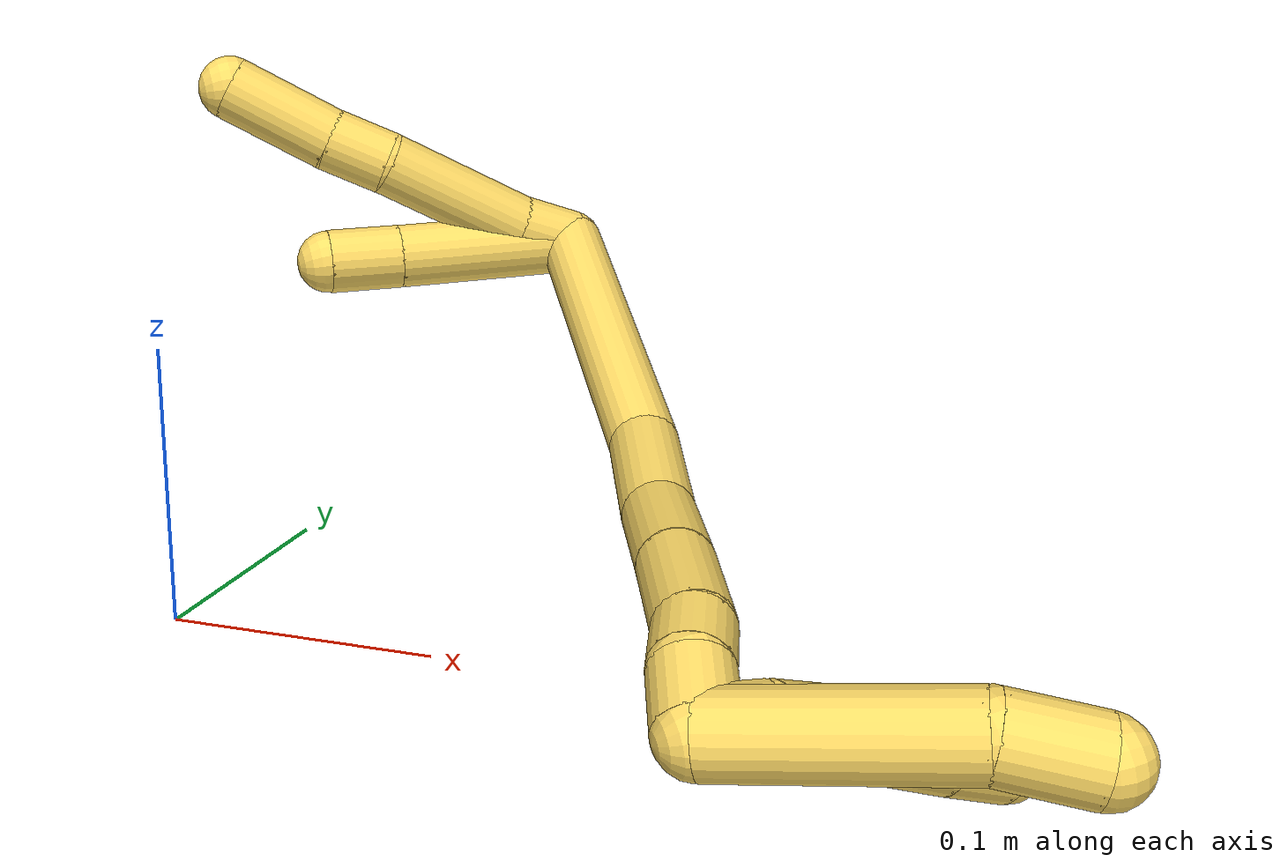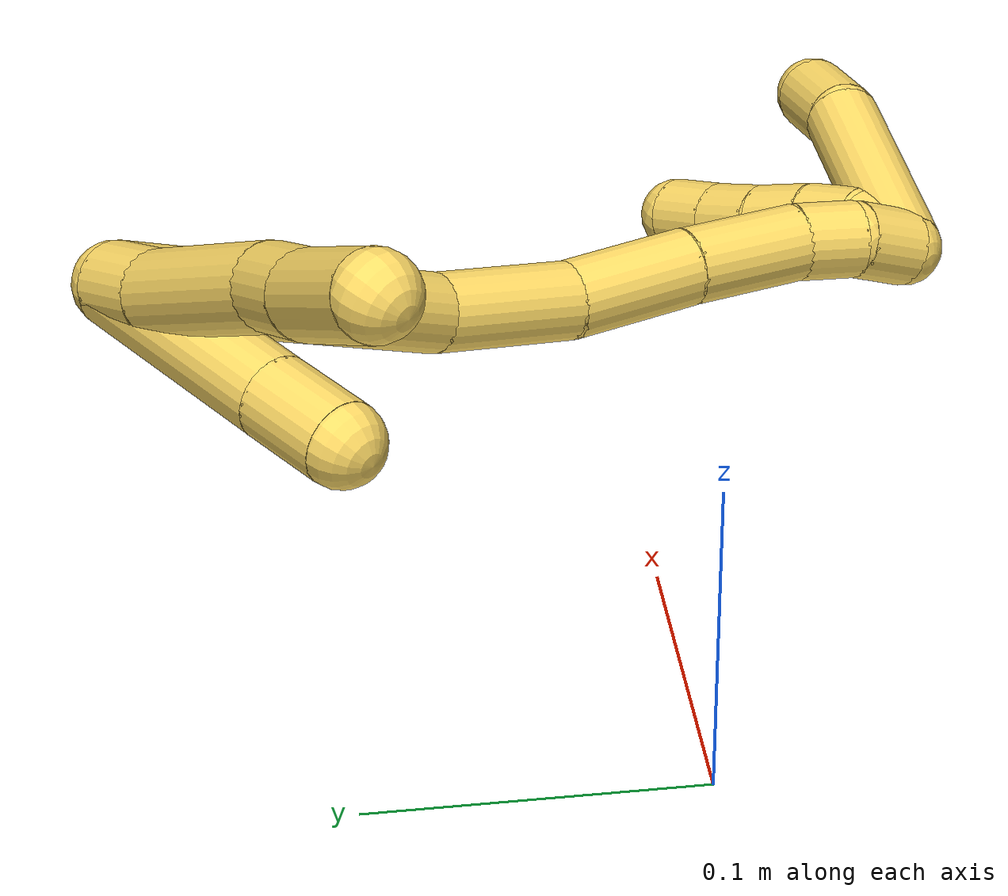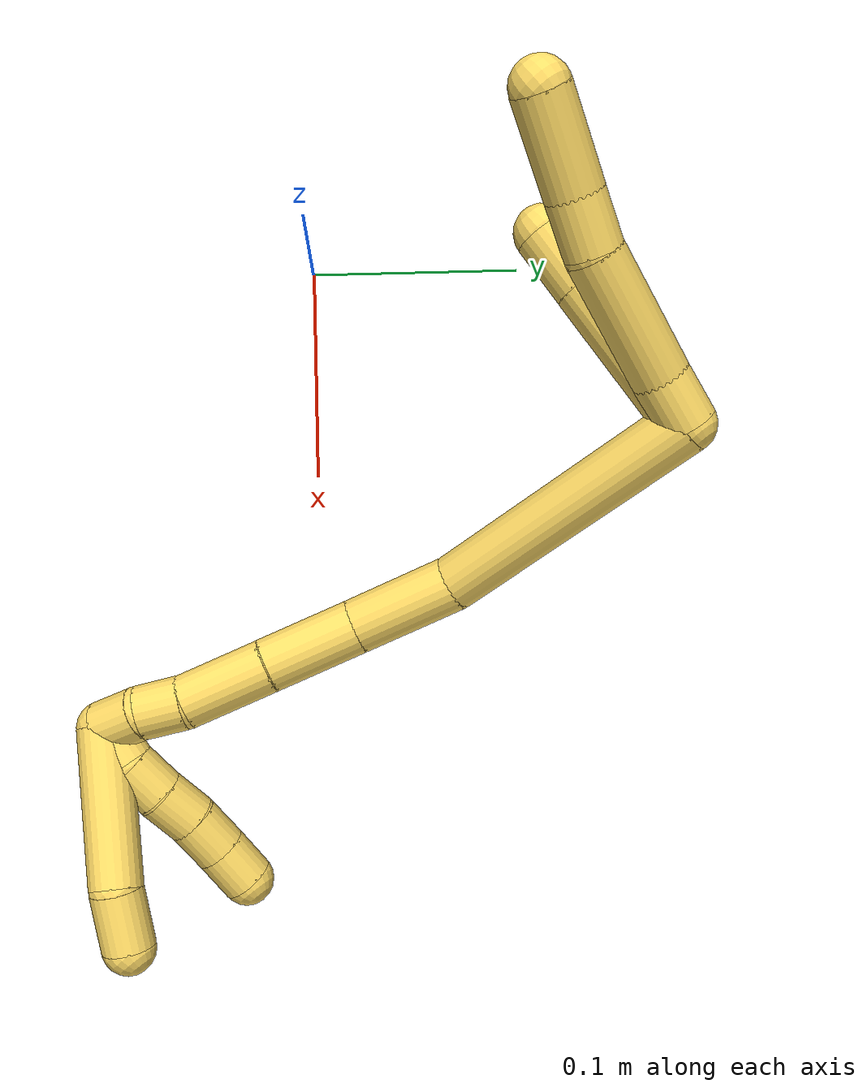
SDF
<sdf version="1.7">
 <world name="default">
  <model name="5">
   <static>0</static>
   <link name="5">
    <collision name="collision-cylinder-e_1_2_8">
     <pose>-0.002106 -0.004621 -0.010372 2.72249 -0.18337 -0.816104</pose>
     <geometry><cylinder><radius>0.0125</radius><length>0.023098</length></cylinder></geometry>
     <surface>
      <friction><ode><mu>1.16</mu><mu2>1.16</mu2><slip1>0</slip1><slip2>0</slip2></ode></friction>
      <contact><ode><kp>1e+06</kp><kd>1</kd><max_vel>0</max_vel><min_depth>0.001</min_depth></ode></contact>
     </surface>
    </collision>
    <visual name="visual-cylinder-e_1_2_8">
     <pose>-0.002106 -0.004621 -0.010372 2.72249 -0.18337 -0.816104</pose>
     <geometry><cylinder><radius>0.0125</radius><length>0.023098</length></cylinder></geometry>
     <material><ambient>1 0.858824 0.4 1</ambient></material>
    </visual>
    <collision name="collision-cylinder-e_2_8_9">
     <pose>-0.010148 -0.02503 -0.045413 2.57226 -0.199988 -0.660616</pose>
     <geometry><cylinder><radius>0.0125</radius><length>0.059766</length></cylinder></geometry>
     <surface>
      <friction><ode><mu>1.16</mu><mu2>1.16</mu2><slip1>0</slip1><slip2>0</slip2></ode></friction>
      <contact><ode><kp>1e+06</kp><kd>1</kd><max_vel>0</max_vel><min_depth>0.001</min_depth></ode></contact>
     </surface>
    </collision>
    <visual name="visual-cylinder-e_2_8_9">
     <pose>-0.010148 -0.02503 -0.045413 2.57226 -0.199988 -0.660616</pose>
     <geometry><cylinder><radius>0.0125</radius><length>0.059766</length></cylinder></geometry>
     <material><ambient>1 0.858824 0.4 1</ambient></material>
    </visual>
    <collision name="collision-cylinder-e_3_9_10">
     <pose>-0.02046 -0.045874 -0.080116 2.67492 -0.371278 -1.33747</pose>
     <geometry><cylinder><radius>0.0125</radius><length>0.024119</length></cylinder></geometry>
     <surface>
      <friction><ode><mu>1.16</mu><mu2>1.16</mu2><slip1>0</slip1><slip2>0</slip2></ode></friction>
      <contact><ode><kp>1e+06</kp><kd>1</kd><max_vel>0</max_vel><min_depth>0.001</min_depth></ode></contact>
     </surface>
    </collision>
    <visual name="visual-cylinder-e_3_9_10">
     <pose>-0.02046 -0.045874 -0.080116 2.67492 -0.371278 -1.33747</pose>
     <geometry><cylinder><radius>0.0125</radius><length>0.024119</length></cylinder></geometry>
     <material><ambient>1 0.858824 0.4 1</ambient></material>
    </visual>
    <collision name="collision-cylinder-e_4_10_6">
     <pose>-0.032623 -0.061634 -0.107105 2.57839 -0.370509 -1.14967</pose>
     <geometry><cylinder><radius>0.0125</radius><length>0.043017</length></cylinder></geometry>
     <surface>
      <friction><ode><mu>1.16</mu><mu2>1.16</mu2><slip1>0</slip1><slip2>0</slip2></ode></friction>
      <contact><ode><kp>1e+06</kp><kd>1</kd><max_vel>0</max_vel><min_depth>0.001</min_depth></ode></contact>
     </surface>
    </collision>
    <visual name="visual-cylinder-e_4_10_6">
     <pose>-0.032623 -0.061634 -0.107105 2.57839 -0.370509 -1.14967</pose>
     <geometry><cylinder><radius>0.0125</radius><length>0.043017</length></cylinder></geometry>
     <material><ambient>1 0.858824 0.4 1</ambient></material>
    </visual>
    <collision name="collision-cylinder-e_1_2_11">
     <pose>-0.002052 -0.002631 -0.035741 3.0681 -0.057203 -1.32261</pose>
     <geometry><cylinder><radius>0.0125</radius><length>0.071792</length></cylinder></geometry>
     <surface>
      <friction><ode><mu>1.16</mu><mu2>1.16</mu2><slip1>0</slip1><slip2>0</slip2></ode></friction>
      <contact><ode><kp>1e+06</kp><kd>1</kd><max_vel>0</max_vel><min_depth>0.001</min_depth></ode></contact>
     </surface>
    </collision>
    <visual name="visual-cylinder-e_1_2_11">
     <pose>-0.002052 -0.002631 -0.035741 3.0681 -0.057203 -1.32261</pose>
     <geometry><cylinder><radius>0.0125</radius><length>0.071792</length></cylinder></geometry>
     <material><ambient>1 0.858824 0.4 1</ambient></material>
    </visual>
    <collision name="collision-cylinder-e_2_11_5">
     <pose>-0.00494 -0.006463 -0.085509 3.05622 -0.059287 -1.21368</pose>
     <geometry><cylinder><radius>0.0125</radius><length>0.028208</length></cylinder></geometry>
     <surface>
      <friction><ode><mu>1.16</mu><mu2>1.16</mu2><slip1>0</slip1><slip2>0</slip2></ode></friction>
      <contact><ode><kp>1e+06</kp><kd>1</kd><max_vel>0</max_vel><min_depth>0.001</min_depth></ode></contact>
     </surface>
    </collision>
    <visual name="visual-cylinder-e_2_11_5">
     <pose>-0.00494 -0.006463 -0.085509 3.05622 -0.059287 -1.21368</pose>
     <geometry><cylinder><radius>0.0125</radius><length>0.028208</length></cylinder></geometry>
     <material><ambient>1 0.858824 0.4 1</ambient></material>
    </visual>
    <collision name="collision-cylinder-e_1_2_12">
     <pose>0.061313 0.010453 -0.007579 -2.19814 1.36324 -2.019</pose>
     <geometry><cylinder><radius>0.0125</radius><length>0.125316</length></cylinder></geometry>
     <surface>
      <friction><ode><mu>1.16</mu><mu2>1.16</mu2><slip1>0</slip1><slip2>0</slip2></ode></friction>
      <contact><ode><kp>1e+06</kp><kd>1</kd><max_vel>0</max_vel><min_depth>0.001</min_depth></ode></contact>
     </surface>
    </collision>
    <visual name="visual-cylinder-e_1_2_12">
     <pose>0.061313 0.010453 -0.007579 -2.19814 1.36324 -2.019</pose>
     <geometry><cylinder><radius>0.0125</radius><length>0.125316</length></cylinder></geometry>
     <material><ambient>1 0.858824 0.4 1</ambient></material>
    </visual>
    <collision name="collision-cylinder-e_2_12_13">
     <pose>0.145842 0.018855 -0.02149 2.82824 1.2916 2.72833</pose>
     <geometry><cylinder><radius>0.0125</radius><length>0.048302</length></cylinder></geometry>
     <surface>
      <friction><ode><mu>1.16</mu><mu2>1.16</mu2><slip1>0</slip1><slip2>0</slip2></ode></friction>
      <contact><ode><kp>1e+06</kp><kd>1</kd><max_vel>0</max_vel><min_depth>0.001</min_depth></ode></contact>
     </surface>
    </collision>
    <visual name="visual-cylinder-e_2_12_13">
     <pose>0.145842 0.018855 -0.02149 2.82824 1.2916 2.72833</pose>
     <geometry><cylinder><radius>0.0125</radius><length>0.048302</length></cylinder></geometry>
     <material><ambient>1 0.858824 0.4 1</ambient></material>
    </visual>
    <collision name="collision-cylinder-e_3_13_14">
     <pose>0.189301 0.010939 -0.033062 2.30011 1.20023 1.98339</pose>
     <geometry><cylinder><radius>0.0125</radius><length>0.043435</length></cylinder></geometry>
     <surface>
      <friction><ode><mu>1.16</mu><mu2>1.16</mu2><slip1>0</slip1><slip2>0</slip2></ode></friction>
      <contact><ode><kp>1e+06</kp><kd>1</kd><max_vel>0</max_vel><min_depth>0.001</min_depth></ode></contact>
     </surface>
    </collision>
    <visual name="visual-cylinder-e_3_13_14">
     <pose>0.189301 0.010939 -0.033062 2.30011 1.20023 1.98339</pose>
     <geometry><cylinder><radius>0.0125</radius><length>0.043435</length></cylinder></geometry>
     <material><ambient>1 0.858824 0.4 1</ambient></material>
    </visual>
    <collision name="collision-cylinder-e_4_14_15">
     <pose>0.228812 0.000644 -0.043429 2.4287 1.23266 2.17371</pose>
     <geometry><cylinder><radius>0.0125</radius><length>0.040847</length></cylinder></geometry>
     <surface>
      <friction><ode><mu>1.16</mu><mu2>1.16</mu2><slip1>0</slip1><slip2>0</slip2></ode></friction>
      <contact><ode><kp>1e+06</kp><kd>1</kd><max_vel>0</max_vel><min_depth>0.001</min_depth></ode></contact>
     </surface>
    </collision>
    <visual name="visual-cylinder-e_4_14_15">
     <pose>0.228812 0.000644 -0.043429 2.4287 1.23266 2.17371</pose>
     <geometry><cylinder><radius>0.0125</radius><length>0.040847</length></cylinder></geometry>
     <material><ambient>1 0.858824 0.4 1</ambient></material>
    </visual>
    <collision name="collision-cylinder-e_5_15_16">
     <pose>0.25747 -0.005467 -0.052973 2.77836 1.10438 2.56225</pose>
     <geometry><cylinder><radius>0.0125</radius><length>0.021028</length></cylinder></geometry>
     <surface>
      <friction><ode><mu>1.16</mu><mu2>1.16</mu2><slip1>0</slip1><slip2>0</slip2></ode></friction>
      <contact><ode><kp>1e+06</kp><kd>1</kd><max_vel>0</max_vel><min_depth>0.001</min_depth></ode></contact>
     </surface>
    </collision>
    <visual name="visual-cylinder-e_5_15_16">
     <pose>0.25747 -0.005467 -0.052973 2.77836 1.10438 2.56225</pose>
     <geometry><cylinder><radius>0.0125</radius><length>0.021028</length></cylinder></geometry>
     <material><ambient>1 0.858824 0.4 1</ambient></material>
    </visual>
    <collision name="collision-cylinder-e_6_16_1">
     <pose>0.276801 -0.005918 -0.060661 -2.7818 1.23297 -2.63915</pose>
     <geometry><cylinder><radius>0.0125</radius><length>0.021072</length></cylinder></geometry>
     <surface>
      <friction><ode><mu>1.16</mu><mu2>1.16</mu2><slip1>0</slip1><slip2>0</slip2></ode></friction>
      <contact><ode><kp>1e+06</kp><kd>1</kd><max_vel>0</max_vel><min_depth>0.001</min_depth></ode></contact>
     </surface>
    </collision>
    <visual name="visual-cylinder-e_6_16_1">
     <pose>0.276801 -0.005918 -0.060661 -2.7818 1.23297 -2.63915</pose>
     <geometry><cylinder><radius>0.0125</radius><length>0.021072</length></cylinder></geometry>
     <material><ambient>1 0.858824 0.4 1</ambient></material>
    </visual>
    <collision name="collision-cylinder-e_1_1_17">
     <pose>0.304761 -0.009988 -0.032816 0.168705 0.518763 0.044866</pose>
     <geometry><cylinder><radius>0.0125</radius><length>0.072687</length></cylinder></geometry>
     <surface>
      <friction><ode><mu>1.16</mu><mu2>1.16</mu2><slip1>0</slip1><slip2>0</slip2></ode></friction>
      <contact><ode><kp>1e+06</kp><kd>1</kd><max_vel>0</max_vel><min_depth>0.001</min_depth></ode></contact>
     </surface>
    </collision>
    <visual name="visual-cylinder-e_1_1_17">
     <pose>0.304761 -0.009988 -0.032816 0.168705 0.518763 0.044866</pose>
     <geometry><cylinder><radius>0.0125</radius><length>0.072687</length></cylinder></geometry>
     <material><ambient>1 0.858824 0.4 1</ambient></material>
    </visual>
    <collision name="collision-cylinder-e_2_17_4">
     <pose>0.329542 -0.013212 0.00998 -0.175765 0.517954 -0.046676</pose>
     <geometry><cylinder><radius>0.0125</radius><length>0.027313</length></cylinder></geometry>
     <surface>
      <friction><ode><mu>1.16</mu><mu2>1.16</mu2><slip1>0</slip1><slip2>0</slip2></ode></friction>
      <contact><ode><kp>1e+06</kp><kd>1</kd><max_vel>0</max_vel><min_depth>0.001</min_depth></ode></contact>
     </surface>
    </collision>
    <visual name="visual-cylinder-e_2_17_4">
     <pose>0.329542 -0.013212 0.00998 -0.175765 0.517954 -0.046676</pose>
     <geometry><cylinder><radius>0.0125</radius><length>0.027313</length></cylinder></geometry>
     <material><ambient>1 0.858824 0.4 1</ambient></material>
    </visual>
    <collision name="collision-cylinder-e_1_1_18">
     <pose>0.28769 -0.003315 -0.05407 -0.138375 0.095003 -0.006588</pose>
     <geometry><cylinder><radius>0.0125</radius><length>0.02</length></cylinder></geometry>
     <surface>
      <friction><ode><mu>1.16</mu><mu2>1.16</mu2><slip1>0</slip1><slip2>0</slip2></ode></friction>
      <contact><ode><kp>1e+06</kp><kd>1</kd><max_vel>0</max_vel><min_depth>0.001</min_depth></ode></contact>
     </surface>
    </collision>
    <visual name="visual-cylinder-e_1_1_18">
     <pose>0.28769 -0.003315 -0.05407 -0.138375 0.095003 -0.006588</pose>
     <geometry><cylinder><radius>0.0125</radius><length>0.02</length></cylinder></geometry>
     <material><ambient>1 0.858824 0.4 1</ambient></material>
    </visual>
    <collision name="collision-cylinder-e_2_18_19">
     <pose>0.288513 0.002145 -0.035084 -0.421079 -0.012533 0.002678</pose>
     <geometry><cylinder><radius>0.0125</radius><length>0.02</length></cylinder></geometry>
     <surface>
      <friction><ode><mu>1.16</mu><mu2>1.16</mu2><slip1>0</slip1><slip2>0</slip2></ode></friction>
      <contact><ode><kp>1e+06</kp><kd>1</kd><max_vel>0</max_vel><min_depth>0.001</min_depth></ode></contact>
     </surface>
    </collision>
    <visual name="visual-cylinder-e_2_18_19">
     <pose>0.288513 0.002145 -0.035084 -0.421079 -0.012533 0.002678</pose>
     <geometry><cylinder><radius>0.0125</radius><length>0.02</length></cylinder></geometry>
     <material><ambient>1 0.858824 0.4 1</ambient></material>
    </visual>
    <collision name="collision-cylinder-e_3_19_20">
     <pose>0.287859 0.011163 -0.017275 -0.516438 -0.052915 0.013979</pose>
     <geometry><cylinder><radius>0.0125</radius><length>0.02</length></cylinder></geometry>
     <surface>
      <friction><ode><mu>1.16</mu><mu2>1.16</mu2><slip1>0</slip1><slip2>0</slip2></ode></friction>
      <contact><ode><kp>1e+06</kp><kd>1</kd><max_vel>0</max_vel><min_depth>0.001</min_depth></ode></contact>
     </surface>
    </collision>
    <visual name="visual-cylinder-e_3_19_20">
     <pose>0.287859 0.011163 -0.017275 -0.516438 -0.052915 0.013979</pose>
     <geometry><cylinder><radius>0.0125</radius><length>0.02</length></cylinder></geometry>
     <material><ambient>1 0.858824 0.4 1</ambient></material>
    </visual>
    <collision name="collision-cylinder-e_4_20_21">
     <pose>0.287998 0.020638 0.000291 -0.47286 0.066778 -0.016095</pose>
     <geometry><cylinder><radius>0.0125</radius><length>0.02</length></cylinder></geometry>
     <surface>
      <friction><ode><mu>1.16</mu><mu2>1.16</mu2><slip1>0</slip1><slip2>0</slip2></ode></friction>
      <contact><ode><kp>1e+06</kp><kd>1</kd><max_vel>0</max_vel><min_depth>0.001</min_depth></ode></contact>
     </surface>
    </collision>
    <visual name="visual-cylinder-e_4_20_21">
     <pose>0.287998 0.020638 0.000291 -0.47286 0.066778 -0.016095</pose>
     <geometry><cylinder><radius>0.0125</radius><length>0.02</length></cylinder></geometry>
     <material><ambient>1 0.858824 0.4 1</ambient></material>
    </visual>
    <collision name="collision-cylinder-e_5_21_3">
     <pose>0.289392 0.0293 0.018258 -0.425564 0.07282 -0.01574</pose>
     <geometry><cylinder><radius>0.0125</radius><length>0.02</length></cylinder></geometry>
     <surface>
      <friction><ode><mu>1.16</mu><mu2>1.16</mu2><slip1>0</slip1><slip2>0</slip2></ode></friction>
      <contact><ode><kp>1e+06</kp><kd>1</kd><max_vel>0</max_vel><min_depth>0.001</min_depth></ode></contact>
     </surface>
    </collision>
    <visual name="visual-cylinder-e_5_21_3">
     <pose>0.289392 0.0293 0.018258 -0.425564 0.07282 -0.01574</pose>
     <geometry><cylinder><radius>0.0125</radius><length>0.02</length></cylinder></geometry>
     <material><ambient>1 0.858824 0.4 1</ambient></material>
    </visual>
    <collision name="collision-sphere-3">
     <pose>0.29012 0.033417 0.027342 0 -0 0</pose>
     <geometry><sphere><radius>0.0125</radius></sphere></geometry>
     <surface>
      <friction><ode><mu>1.16</mu><mu2>1.16</mu2><slip1>0</slip1><slip2>0</slip2></ode></friction>
      <contact><ode><kp>1e+06</kp><kd>1</kd><max_vel>0</max_vel><min_depth>0.001</min_depth></ode></contact>
     </surface>
    </collision>
    <visual name="visual-sphere-3">
     <pose>0.29012 0.033417 0.027342 0 -0 0</pose>
     <geometry><sphere><radius>0.0125</radius></sphere></geometry>
     <material><ambient>1 0.858824 0.4 1</ambient></material>
    </visual>
    <collision name="collision-sphere-21">
     <pose>0.288665 0.025182 0.009174 0 -0 0</pose>
     <geometry><sphere><radius>0.0125</radius></sphere></geometry>
     <surface>
      <friction><ode><mu>1.16</mu><mu2>1.16</mu2><slip1>0</slip1><slip2>0</slip2></ode></friction>
      <contact><ode><kp>1e+06</kp><kd>1</kd><max_vel>0</max_vel><min_depth>0.001</min_depth></ode></contact>
     </surface>
    </collision>
    <visual name="visual-sphere-21">
     <pose>0.288665 0.025182 0.009174 0 -0 0</pose>
     <geometry><sphere><radius>0.0125</radius></sphere></geometry>
     <material><ambient>1 0.858824 0.4 1</ambient></material>
    </visual>
    <collision name="collision-sphere-20">
     <pose>0.28733 0.016094 -0.008591 0 -0 0</pose>
     <geometry><sphere><radius>0.0125</radius></sphere></geometry>
     <surface>
      <friction><ode><mu>1.16</mu><mu2>1.16</mu2><slip1>0</slip1><slip2>0</slip2></ode></friction>
      <contact><ode><kp>1e+06</kp><kd>1</kd><max_vel>0</max_vel><min_depth>0.001</min_depth></ode></contact>
     </surface>
    </collision>
    <visual name="visual-sphere-20">
     <pose>0.28733 0.016094 -0.008591 0 -0 0</pose>
     <geometry><sphere><radius>0.0125</radius></sphere></geometry>
     <material><ambient>1 0.858824 0.4 1</ambient></material>
    </visual>
    <collision name="collision-sphere-19">
     <pose>0.288388 0.006232 -0.025959 0 -0 0</pose>
     <geometry><sphere><radius>0.0125</radius></sphere></geometry>
     <surface>
      <friction><ode><mu>1.16</mu><mu2>1.16</mu2><slip1>0</slip1><slip2>0</slip2></ode></friction>
      <contact><ode><kp>1e+06</kp><kd>1</kd><max_vel>0</max_vel><min_depth>0.001</min_depth></ode></contact>
     </surface>
    </collision>
    <visual name="visual-sphere-19">
     <pose>0.288388 0.006232 -0.025959 0 -0 0</pose>
     <geometry><sphere><radius>0.0125</radius></sphere></geometry>
     <material><ambient>1 0.858824 0.4 1</ambient></material>
    </visual>
    <collision name="collision-sphere-11">
     <pose>-0.004104 -0.005263 -0.071481 0 -0 0</pose>
     <geometry><sphere><radius>0.0125</radius></sphere></geometry>
     <surface>
      <friction><ode><mu>1.16</mu><mu2>1.16</mu2><slip1>0</slip1><slip2>0</slip2></ode></friction>
      <contact><ode><kp>1e+06</kp><kd>1</kd><max_vel>0</max_vel><min_depth>0.001</min_depth></ode></contact>
     </surface>
    </collision>
    <visual name="visual-sphere-11">
     <pose>-0.004104 -0.005263 -0.071481 0 -0 0</pose>
     <geometry><sphere><radius>0.0125</radius></sphere></geometry>
     <material><ambient>1 0.858824 0.4 1</ambient></material>
    </visual>
    <collision name="collision-sphere-6">
     <pose>-0.040411 -0.072338 -0.124058 0 -0 0</pose>
     <geometry><sphere><radius>0.0125</radius></sphere></geometry>
     <surface>
      <friction><ode><mu>1.16</mu><mu2>1.16</mu2><slip1>0</slip1><slip2>0</slip2></ode></friction>
      <contact><ode><kp>1e+06</kp><kd>1</kd><max_vel>0</max_vel><min_depth>0.001</min_depth></ode></contact>
     </surface>
    </collision>
    <visual name="visual-sphere-6">
     <pose>-0.040411 -0.072338 -0.124058 0 -0 0</pose>
     <geometry><sphere><radius>0.0125</radius></sphere></geometry>
     <material><ambient>1 0.858824 0.4 1</ambient></material>
    </visual>
    <collision name="collision-sphere-10">
     <pose>-0.024835 -0.05093 -0.090153 0 -0 0</pose>
     <geometry><sphere><radius>0.0125</radius></sphere></geometry>
     <surface>
      <friction><ode><mu>1.16</mu><mu2>1.16</mu2><slip1>0</slip1><slip2>0</slip2></ode></friction>
      <contact><ode><kp>1e+06</kp><kd>1</kd><max_vel>0</max_vel><min_depth>0.001</min_depth></ode></contact>
     </surface>
    </collision>
    <visual name="visual-sphere-10">
     <pose>-0.024835 -0.05093 -0.090153 0 -0 0</pose>
     <geometry><sphere><radius>0.0125</radius></sphere></geometry>
     <material><ambient>1 0.858824 0.4 1</ambient></material>
    </visual>
    <collision name="collision-sphere-9">
     <pose>-0.016085 -0.040818 -0.07008 0 -0 0</pose>
     <geometry><sphere><radius>0.0125</radius></sphere></geometry>
     <surface>
      <friction><ode><mu>1.16</mu><mu2>1.16</mu2><slip1>0</slip1><slip2>0</slip2></ode></friction>
      <contact><ode><kp>1e+06</kp><kd>1</kd><max_vel>0</max_vel><min_depth>0.001</min_depth></ode></contact>
     </surface>
    </collision>
    <visual name="visual-sphere-9">
     <pose>-0.016085 -0.040818 -0.07008 0 -0 0</pose>
     <geometry><sphere><radius>0.0125</radius></sphere></geometry>
     <material><ambient>1 0.858824 0.4 1</ambient></material>
    </visual>
    <collision name="collision-sphere-2">
     <geometry><sphere><radius>0.0125</radius></sphere></geometry>
     <surface>
      <friction><ode><mu>1.16</mu><mu2>1.16</mu2><slip1>0</slip1><slip2>0</slip2></ode></friction>
      <contact><ode><kp>1e+06</kp><kd>1</kd><max_vel>0</max_vel><min_depth>0.001</min_depth></ode></contact>
     </surface>
    </collision>
    <visual name="visual-sphere-2">
     <geometry><sphere><radius>0.0125</radius></sphere></geometry>
     <material><ambient>1 0.858824 0.4 1</ambient></material>
    </visual>
    <collision name="collision-sphere-8">
     <pose>-0.004212 -0.009242 -0.020745 0 -0 0</pose>
     <geometry><sphere><radius>0.0125</radius></sphere></geometry>
     <surface>
      <friction><ode><mu>1.16</mu><mu2>1.16</mu2><slip1>0</slip1><slip2>0</slip2></ode></friction>
      <contact><ode><kp>1e+06</kp><kd>1</kd><max_vel>0</max_vel><min_depth>0.001</min_depth></ode></contact>
     </surface>
    </collision>
    <visual name="visual-sphere-8">
     <pose>-0.004212 -0.009242 -0.020745 0 -0 0</pose>
     <geometry><sphere><radius>0.0125</radius></sphere></geometry>
     <material><ambient>1 0.858824 0.4 1</ambient></material>
    </visual>
    <collision name="collision-sphere-5">
     <pose>-0.005776 -0.007664 -0.099537 0 -0 0</pose>
     <geometry><sphere><radius>0.0125</radius></sphere></geometry>
     <surface>
      <friction><ode><mu>1.16</mu><mu2>1.16</mu2><slip1>0</slip1><slip2>0</slip2></ode></friction>
      <contact><ode><kp>1e+06</kp><kd>1</kd><max_vel>0</max_vel><min_depth>0.001</min_depth></ode></contact>
     </surface>
    </collision>
    <visual name="visual-sphere-5">
     <pose>-0.005776 -0.007664 -0.099537 0 -0 0</pose>
     <geometry><sphere><radius>0.0125</radius></sphere></geometry>
     <material><ambient>1 0.858824 0.4 1</ambient></material>
    </visual>
    <collision name="collision-sphere-12">
     <pose>0.122626 0.020907 -0.015158 0 -0 0</pose>
     <geometry><sphere><radius>0.0125</radius></sphere></geometry>
     <surface>
      <friction><ode><mu>1.16</mu><mu2>1.16</mu2><slip1>0</slip1><slip2>0</slip2></ode></friction>
      <contact><ode><kp>1e+06</kp><kd>1</kd><max_vel>0</max_vel><min_depth>0.001</min_depth></ode></contact>
     </surface>
    </collision>
    <visual name="visual-sphere-12">
     <pose>0.122626 0.020907 -0.015158 0 -0 0</pose>
     <geometry><sphere><radius>0.0125</radius></sphere></geometry>
     <material><ambient>1 0.858824 0.4 1</ambient></material>
    </visual>
    <collision name="collision-sphere-13">
     <pose>0.169058 0.016803 -0.027822 0 -0 0</pose>
     <geometry><sphere><radius>0.0125</radius></sphere></geometry>
     <surface>
      <friction><ode><mu>1.16</mu><mu2>1.16</mu2><slip1>0</slip1><slip2>0</slip2></ode></friction>
      <contact><ode><kp>1e+06</kp><kd>1</kd><max_vel>0</max_vel><min_depth>0.001</min_depth></ode></contact>
     </surface>
    </collision>
    <visual name="visual-sphere-13">
     <pose>0.169058 0.016803 -0.027822 0 -0 0</pose>
     <geometry><sphere><radius>0.0125</radius></sphere></geometry>
     <material><ambient>1 0.858824 0.4 1</ambient></material>
    </visual>
    <collision name="collision-sphere-14">
     <pose>0.209545 0.005075 -0.038303 0 -0 0</pose>
     <geometry><sphere><radius>0.0125</radius></sphere></geometry>
     <surface>
      <friction><ode><mu>1.16</mu><mu2>1.16</mu2><slip1>0</slip1><slip2>0</slip2></ode></friction>
      <contact><ode><kp>1e+06</kp><kd>1</kd><max_vel>0</max_vel><min_depth>0.001</min_depth></ode></contact>
     </surface>
    </collision>
    <visual name="visual-sphere-14">
     <pose>0.209545 0.005075 -0.038303 0 -0 0</pose>
     <geometry><sphere><radius>0.0125</radius></sphere></geometry>
     <material><ambient>1 0.858824 0.4 1</ambient></material>
    </visual>
    <collision name="collision-sphere-15">
     <pose>0.248079 -0.003787 -0.048554 0 -0 0</pose>
     <geometry><sphere><radius>0.0125</radius></sphere></geometry>
     <surface>
      <friction><ode><mu>1.16</mu><mu2>1.16</mu2><slip1>0</slip1><slip2>0</slip2></ode></friction>
      <contact><ode><kp>1e+06</kp><kd>1</kd><max_vel>0</max_vel><min_depth>0.001</min_depth></ode></contact>
     </surface>
    </collision>
    <visual name="visual-sphere-15">
     <pose>0.248079 -0.003787 -0.048554 0 -0 0</pose>
     <geometry><sphere><radius>0.0125</radius></sphere></geometry>
     <material><ambient>1 0.858824 0.4 1</ambient></material>
    </visual>
    <collision name="collision-sphere-16">
     <pose>0.266861 -0.007147 -0.057393 0 -0 0</pose>
     <geometry><sphere><radius>0.0125</radius></sphere></geometry>
     <surface>
      <friction><ode><mu>1.16</mu><mu2>1.16</mu2><slip1>0</slip1><slip2>0</slip2></ode></friction>
      <contact><ode><kp>1e+06</kp><kd>1</kd><max_vel>0</max_vel><min_depth>0.001</min_depth></ode></contact>
     </surface>
    </collision>
    <visual name="visual-sphere-16">
     <pose>0.266861 -0.007147 -0.057393 0 -0 0</pose>
     <geometry><sphere><radius>0.0125</radius></sphere></geometry>
     <material><ambient>1 0.858824 0.4 1</ambient></material>
    </visual>
    <collision name="collision-sphere-1">
     <pose>0.286742 -0.004688 -0.06393 0 -0 0</pose>
     <geometry><sphere><radius>0.0125</radius></sphere></geometry>
     <surface>
      <friction><ode><mu>1.16</mu><mu2>1.16</mu2><slip1>0</slip1><slip2>0</slip2></ode></friction>
      <contact><ode><kp>1e+06</kp><kd>1</kd><max_vel>0</max_vel><min_depth>0.001</min_depth></ode></contact>
     </surface>
    </collision>
    <visual name="visual-sphere-1">
     <pose>0.286742 -0.004688 -0.06393 0 -0 0</pose>
     <geometry><sphere><radius>0.0125</radius></sphere></geometry>
     <material><ambient>1 0.858824 0.4 1</ambient></material>
    </visual>
    <collision name="collision-sphere-18">
     <pose>0.288639 -0.001942 -0.04421 0 -0 0</pose>
     <geometry><sphere><radius>0.0125</radius></sphere></geometry>
     <surface>
      <friction><ode><mu>1.16</mu><mu2>1.16</mu2><slip1>0</slip1><slip2>0</slip2></ode></friction>
      <contact><ode><kp>1e+06</kp><kd>1</kd><max_vel>0</max_vel><min_depth>0.001</min_depth></ode></contact>
     </surface>
    </collision>
    <visual name="visual-sphere-18">
     <pose>0.288639 -0.001942 -0.04421 0 -0 0</pose>
     <geometry><sphere><radius>0.0125</radius></sphere></geometry>
     <material><ambient>1 0.858824 0.4 1</ambient></material>
    </visual>
    <collision name="collision-sphere-17">
     <pose>0.32278 -0.015287 -0.001702 0 -0 0</pose>
     <geometry><sphere><radius>0.0125</radius></sphere></geometry>
     <surface>
      <friction><ode><mu>1.16</mu><mu2>1.16</mu2><slip1>0</slip1><slip2>0</slip2></ode></friction>
      <contact><ode><kp>1e+06</kp><kd>1</kd><max_vel>0</max_vel><min_depth>0.001</min_depth></ode></contact>
     </surface>
    </collision>
    <visual name="visual-sphere-17">
     <pose>0.32278 -0.015287 -0.001702 0 -0 0</pose>
     <geometry><sphere><radius>0.0125</radius></sphere></geometry>
     <material><ambient>1 0.858824 0.4 1</ambient></material>
    </visual>
    <collision name="collision-sphere-4">
     <pose>0.336303 -0.011138 0.021663 0 -0 0</pose>
     <geometry><sphere><radius>0.0125</radius></sphere></geometry>
     <surface>
      <friction><ode><mu>1.16</mu><mu2>1.16</mu2><slip1>0</slip1><slip2>0</slip2></ode></friction>
      <contact><ode><kp>1e+06</kp><kd>1</kd><max_vel>0</max_vel><min_depth>0.001</min_depth></ode></contact>
     </surface>
    </collision>
    <visual name="visual-sphere-4">
     <pose>0.336303 -0.011138 0.021663 0 -0 0</pose>
     <geometry><sphere><radius>0.0125</radius></sphere></geometry>
     <material><ambient>1 0.858824 0.4 1</ambient></material>
    </visual>
    <inertial>
     <pose>0.134249 -0.004183 -0.034575 0 -0 0</pose>
     <mass>0.75</mass>
     <inertia>
      <ixx>-1.1e-05</ixx>
      <ixy>0</ixy>
      <ixz>0</ixz>
      <iyy>0.000126</iyy>
      <iyz>0</iyz>
      <izz>-0.000213</izz>
     </inertia>
    </inertial>
   </link>
   <pose>0.097475 0.156588 0.118401 -1.43849 0.269944 -0.902411</pose>
  </model>
 </world>
</sdf>
